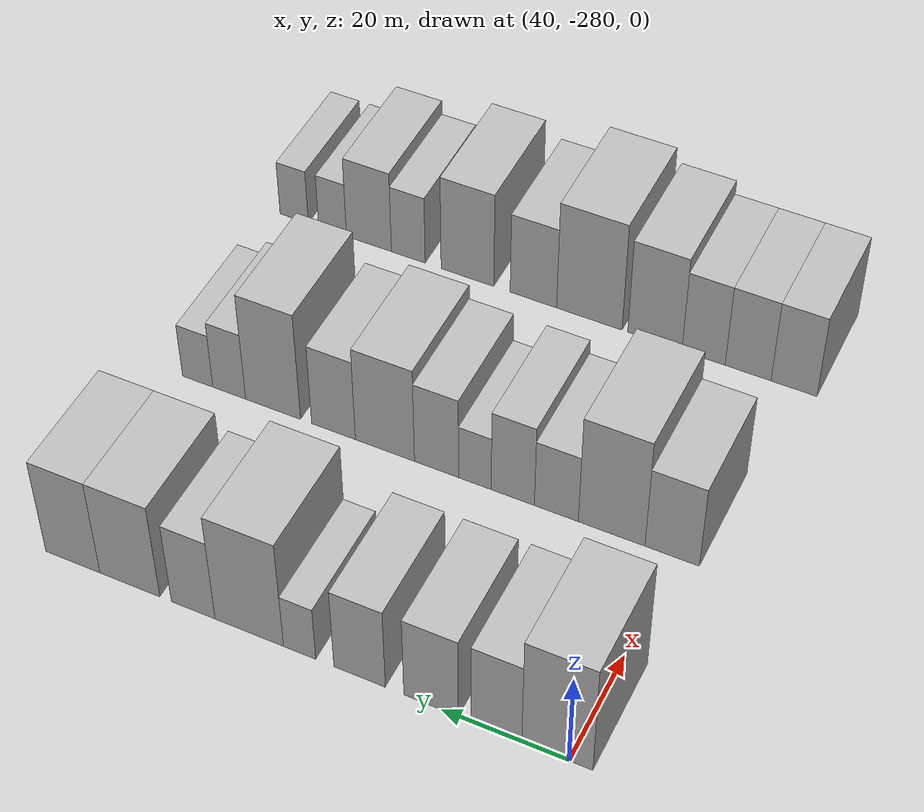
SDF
<sdf version="1.6">
 <world name="default">
  <model name="building_11">
   <static>1</static>
   <pose>50.0000 -278.0995 0 0.000000 0.000000 0.000000</pose>
   <link name="link">
    <pose>0 0 12.00 0 0 0</pose>
    <collision name="collision"><geometry><box><size>20.0000 11.0205 24.0000</size></box></geometry></collision>
    <visual name="visual">
     <cast_shadows>0</cast_shadows>
     <geometry><box><size>20.0000 11.0205 24.0000</size></box></geometry>
     <material>
      <script>
       <uri>model://HANNAS_wall/materials/scripts</uri>
       <uri>model://HANNAS_wall/materials/textures</uri>
       <name>vrc/HANNAS_wall</name>
      </script>
     </material>
    </visual>
   </link>
  </model>
  <model name="building_12">
   <static>1</static>
   <pose>50.0000 -268.5931 0 0.000000 0.000000 0.000000</pose>
   <link name="link">
    <pose>0 0 9.00 0 0 0</pose>
    <collision name="collision"><geometry><box><size>20.0000 7.9923 18.0000</size></box></geometry></collision>
    <visual name="visual">
     <cast_shadows>0</cast_shadows>
     <geometry><box><size>20.0000 7.9923 18.0000</size></box></geometry>
     <material>
      <script>
       <uri>model://HANNAS_wall/materials/scripts</uri>
       <uri>model://HANNAS_wall/materials/textures</uri>
       <name>vrc/HANNAS_wall</name>
      </script>
     </material>
    </visual>
   </link>
  </model>
  <model name="building_13">
   <static>1</static>
   <pose>50.0000 -258.2329 0 0.000000 0.000000 0.000000</pose>
   <link name="link">
    <pose>0 0 9.00 0 0 0</pose>
    <collision name="collision"><geometry><box><size>20.0000 8.7283 18.0000</size></box></geometry></collision>
    <visual name="visual">
     <cast_shadows>0</cast_shadows>
     <geometry><box><size>20.0000 8.7283 18.0000</size></box></geometry>
     <material>
      <script>
       <uri>model://HANNAS_wall/materials/scripts</uri>
       <uri>model://HANNAS_wall/materials/textures</uri>
       <name>vrc/HANNAS_wall</name>
      </script>
     </material>
    </visual>
   </link>
  </model>
  <model name="building_14">
   <static>1</static>
   <pose>50.0000 -246.6707 0 0.000000 0.000000 0.000000</pose>
   <link name="link">
    <pose>0 0 9.00 0 0 0</pose>
    <collision name="collision"><geometry><box><size>20.0000 8.3961 18.0000</size></box></geometry></collision>
    <visual name="visual">
     <cast_shadows>0</cast_shadows>
     <geometry><box><size>20.0000 8.3961 18.0000</size></box></geometry>
     <material>
      <script>
       <uri>model://HANNAS_wall/materials/scripts</uri>
       <uri>model://HANNAS_wall/materials/textures</uri>
       <name>vrc/HANNAS_wall</name>
      </script>
     </material>
    </visual>
   </link>
  </model>
  <model name="building_15">
   <static>1</static>
   <pose>50.0000 -236.7995 0 0.000000 0.000000 0.000000</pose>
   <link name="link">
    <pose>0 0 6.00 0 0 0</pose>
    <collision name="collision"><geometry><box><size>20.0000 5.3462 12.0000</size></box></geometry></collision>
    <visual name="visual">
     <cast_shadows>0</cast_shadows>
     <geometry><box><size>20.0000 5.3462 12.0000</size></box></geometry>
     <material>
      <script>
       <uri>model://HANNAS_wall/materials/scripts</uri>
       <uri>model://HANNAS_wall/materials/textures</uri>
       <name>vrc/HANNAS_wall</name>
      </script>
     </material>
    </visual>
   </link>
  </model>
  <model name="building_16">
   <static>1</static>
   <pose>50.0000 -228.3568 0 0.000000 0.000000 0.000000</pose>
   <link name="link">
    <pose>0 0 12.00 0 0 0</pose>
    <collision name="collision"><geometry><box><size>20.0000 11.5392 24.0000</size></box></geometry></collision>
    <visual name="visual">
     <cast_shadows>0</cast_shadows>
     <geometry><box><size>20.0000 11.5392 24.0000</size></box></geometry>
     <material>
      <script>
       <uri>model://HANNAS_wall/materials/scripts</uri>
       <uri>model://HANNAS_wall/materials/textures</uri>
       <name>vrc/HANNAS_wall</name>
      </script>
     </material>
    </visual>
   </link>
  </model>
  <model name="building_17">
   <static>1</static>
   <pose>50.0000 -218.8502 0 0.000000 0.000000 0.000000</pose>
   <link name="link">
    <pose>0 0 9.00 0 0 0</pose>
    <collision name="collision"><geometry><box><size>20.0000 7.4741 18.0000</size></box></geometry></collision>
    <visual name="visual">
     <cast_shadows>0</cast_shadows>
     <geometry><box><size>20.0000 7.4741 18.0000</size></box></geometry>
     <material>
      <script>
       <uri>model://HANNAS_wall/materials/scripts</uri>
       <uri>model://HANNAS_wall/materials/textures</uri>
       <name>vrc/HANNAS_wall</name>
      </script>
     </material>
    </visual>
   </link>
  </model>
  <model name="building_18">
   <static>1</static>
   <pose>50.0000 -207.8882 0 0.000000 0.000000 0.000000</pose>
   <link name="link">
    <pose>0 0 10.50 0 0 0</pose>
    <collision name="collision"><geometry><box><size>20.0000 10.4499 21.0000</size></box></geometry></collision>
    <visual name="visual">
     <cast_shadows>0</cast_shadows>
     <geometry><box><size>20.0000 10.4499 21.0000</size></box></geometry>
     <material>
      <script>
       <uri>model://HANNAS_wall/materials/scripts</uri>
       <uri>model://HANNAS_wall/materials/textures</uri>
       <name>vrc/HANNAS_wall</name>
      </script>
     </material>
    </visual>
   </link>
  </model>
  <model name="building_19">
   <static>1</static>
   <pose>50.0000 -197.8814 0 0.000000 0.000000 0.000000</pose>
   <link name="link">
    <pose>0 0 10.50 0 0 0</pose>
    <collision name="collision"><geometry><box><size>20.0000 9.5638 21.0000</size></box></geometry></collision>
    <visual name="visual">
     <cast_shadows>0</cast_shadows>
     <geometry><box><size>20.0000 9.5638 21.0000</size></box></geometry>
     <material>
      <script>
       <uri>model://HANNAS_wall/materials/scripts</uri>
       <uri>model://HANNAS_wall/materials/textures</uri>
       <name>vrc/HANNAS_wall</name>
      </script>
     </material>
    </visual>
   </link>
  </model>
  <model name="building_93">
   <static>1</static>
   <pose>90.0000 -279.3601 0 0.000000 0.000000 0.000000</pose>
   <link name="link">
    <pose>0 0 9.00 0 0 0</pose>
    <collision name="collision"><geometry><box><size>20.0000 8.9115 18.0000</size></box></geometry></collision>
    <visual name="visual">
     <cast_shadows>0</cast_shadows>
     <geometry><box><size>20.0000 8.9115 18.0000</size></box></geometry>
     <material>
      <script>
       <uri>model://HANNAS_wall/materials/scripts</uri>
       <uri>model://HANNAS_wall/materials/textures</uri>
       <name>vrc/HANNAS_wall</name>
      </script>
     </material>
    </visual>
   </link>
  </model>
  <model name="building_94">
   <static>1</static>
   <pose>90.0000 -269.3649 0 0.000000 0.000000 0.000000</pose>
   <link name="link">
    <pose>0 0 12.00 0 0 0</pose>
    <collision name="collision"><geometry><box><size>20.0000 11.0789 24.0000</size></box></geometry></collision>
    <visual name="visual">
     <cast_shadows>0</cast_shadows>
     <geometry><box><size>20.0000 11.0789 24.0000</size></box></geometry>
     <material>
      <script>
       <uri>model://HANNAS_wall/materials/scripts</uri>
       <uri>model://HANNAS_wall/materials/textures</uri>
       <name>vrc/HANNAS_wall</name>
      </script>
     </material>
    </visual>
   </link>
  </model>
  <model name="building_95">
   <static>1</static>
   <pose>90.0000 -260.1246 0 0.000000 0.000000 0.000000</pose>
   <link name="link">
    <pose>0 0 7.50 0 0 0</pose>
    <collision name="collision"><geometry><box><size>20.0000 7.4017 15.0000</size></box></geometry></collision>
    <visual name="visual">
     <cast_shadows>0</cast_shadows>
     <geometry><box><size>20.0000 7.4017 15.0000</size></box></geometry>
     <material>
      <script>
       <uri>model://HANNAS_wall/materials/scripts</uri>
       <uri>model://HANNAS_wall/materials/textures</uri>
       <name>vrc/HANNAS_wall</name>
      </script>
     </material>
    </visual>
   </link>
  </model>
  <model name="building_96">
   <static>1</static>
   <pose>90.0000 -252.7368 0 0.000000 0.000000 0.000000</pose>
   <link name="link">
    <pose>0 0 9.00 0 0 0</pose>
    <collision name="collision"><geometry><box><size>20.0000 7.3741 18.0000</size></box></geometry></collision>
    <visual name="visual">
     <cast_shadows>0</cast_shadows>
     <geometry><box><size>20.0000 7.3741 18.0000</size></box></geometry>
     <material>
      <script>
       <uri>model://HANNAS_wall/materials/scripts</uri>
       <uri>model://HANNAS_wall/materials/textures</uri>
       <name>vrc/HANNAS_wall</name>
      </script>
     </material>
    </visual>
   </link>
  </model>
  <model name="building_97">
   <static>1</static>
   <pose>90.0000 -246.2502 0 0.000000 0.000000 0.000000</pose>
   <link name="link">
    <pose>0 0 6.00 0 0 0</pose>
    <collision name="collision"><geometry><box><size>20.0000 5.5991 12.0000</size></box></geometry></collision>
    <visual name="visual">
     <cast_shadows>0</cast_shadows>
     <geometry><box><size>20.0000 5.5991 12.0000</size></box></geometry>
     <material>
      <script>
       <uri>model://HANNAS_wall/materials/scripts</uri>
       <uri>model://HANNAS_wall/materials/textures</uri>
       <name>vrc/HANNAS_wall</name>
      </script>
     </material>
    </visual>
   </link>
  </model>
  <model name="building_98">
   <static>1</static>
   <pose>90.0000 -239.6065 0 0.000000 0.000000 0.000000</pose>
   <link name="link">
    <pose>0 0 9.00 0 0 0</pose>
    <collision name="collision"><geometry><box><size>20.0000 7.6883 18.0000</size></box></geometry></collision>
    <visual name="visual">
     <cast_shadows>0</cast_shadows>
     <geometry><box><size>20.0000 7.6883 18.0000</size></box></geometry>
     <material>
      <script>
       <uri>model://HANNAS_wall/materials/scripts</uri>
       <uri>model://HANNAS_wall/materials/textures</uri>
       <name>vrc/HANNAS_wall</name>
      </script>
     </material>
    </visual>
   </link>
  </model>
  <model name="building_99">
   <static>1</static>
   <pose>90.0000 -230.5441 0 0.000000 0.000000 0.000000</pose>
   <link name="link">
    <pose>0 0 10.50 0 0 0</pose>
    <collision name="collision"><geometry><box><size>20.0000 10.4366 21.0000</size></box></geometry></collision>
    <visual name="visual">
     <cast_shadows>0</cast_shadows>
     <geometry><box><size>20.0000 10.4366 21.0000</size></box></geometry>
     <material>
      <script>
       <uri>model://HANNAS_wall/materials/scripts</uri>
       <uri>model://HANNAS_wall/materials/textures</uri>
       <name>vrc/HANNAS_wall</name>
      </script>
     </material>
    </visual>
   </link>
  </model>
  <model name="building_100">
   <static>1</static>
   <pose>90.0000 -221.4091 0 0.000000 0.000000 0.000000</pose>
   <link name="link">
    <pose>0 0 9.00 0 0 0</pose>
    <collision name="collision"><geometry><box><size>20.0000 7.8334 18.0000</size></box></geometry></collision>
    <visual name="visual">
     <cast_shadows>0</cast_shadows>
     <geometry><box><size>20.0000 7.8334 18.0000</size></box></geometry>
     <material>
      <script>
       <uri>model://HANNAS_wall/materials/scripts</uri>
       <uri>model://HANNAS_wall/materials/textures</uri>
       <name>vrc/HANNAS_wall</name>
      </script>
     </material>
    </visual>
   </link>
  </model>
  <model name="building_101">
   <static>1</static>
   <pose>90.0000 -210.4926 0 0.000000 0.000000 0.000000</pose>
   <link name="link">
    <pose>0 0 12.00 0 0 0</pose>
    <collision name="collision"><geometry><box><size>20.0000 9.9996 24.0000</size></box></geometry></collision>
    <visual name="visual">
     <cast_shadows>0</cast_shadows>
     <geometry><box><size>20.0000 9.9996 24.0000</size></box></geometry>
     <material>
      <script>
       <uri>model://HANNAS_wall/materials/scripts</uri>
       <uri>model://HANNAS_wall/materials/textures</uri>
       <name>vrc/HANNAS_wall</name>
      </script>
     </material>
    </visual>
   </link>
  </model>
  <model name="building_102">
   <static>1</static>
   <pose>90.0000 -202.4703 0 0.000000 0.000000 0.000000</pose>
   <link name="link">
    <pose>0 0 7.50 0 0 0</pose>
    <collision name="collision"><geometry><box><size>20.0000 6.0449 15.0000</size></box></geometry></collision>
    <visual name="visual">
     <cast_shadows>0</cast_shadows>
     <geometry><box><size>20.0000 6.0449 15.0000</size></box></geometry>
     <material>
      <script>
       <uri>model://HANNAS_wall/materials/scripts</uri>
       <uri>model://HANNAS_wall/materials/textures</uri>
       <name>vrc/HANNAS_wall</name>
      </script>
     </material>
    </visual>
   </link>
  </model>
  <model name="building_103">
   <static>1</static>
   <pose>90.0000 -196.6282 0 0.000000 0.000000 0.000000</pose>
   <link name="link">
    <pose>0 0 6.00 0 0 0</pose>
    <collision name="collision"><geometry><box><size>20.0000 5.6393 12.0000</size></box></geometry></collision>
    <visual name="visual">
     <cast_shadows>0</cast_shadows>
     <geometry><box><size>20.0000 5.6393 12.0000</size></box></geometry>
     <material>
      <script>
       <uri>model://HANNAS_wall/materials/scripts</uri>
       <uri>model://HANNAS_wall/materials/textures</uri>
       <name>vrc/HANNAS_wall</name>
      </script>
     </material>
    </visual>
   </link>
  </model>
  <model name="building_178">
   <static>1</static>
   <pose>130.0000 -284.2657 0 0.000000 0.000000 0.000000</pose>
   <link name="link">
    <pose>0 0 9.00 0 0 0</pose>
    <collision name="collision"><geometry><box><size>20.0000 7.8565 18.0000</size></box></geometry></collision>
    <visual name="visual">
     <cast_shadows>0</cast_shadows>
     <geometry><box><size>20.0000 7.8565 18.0000</size></box></geometry>
     <material>
      <script>
       <uri>model://HANNAS_wall/materials/scripts</uri>
       <uri>model://HANNAS_wall/materials/textures</uri>
       <name>vrc/HANNAS_wall</name>
      </script>
     </material>
    </visual>
   </link>
  </model>
  <model name="building_179">
   <static>1</static>
   <pose>130.0000 -276.3596 0 0.000000 0.000000 0.000000</pose>
   <link name="link">
    <pose>0 0 9.00 0 0 0</pose>
    <collision name="collision"><geometry><box><size>20.0000 7.9558 18.0000</size></box></geometry></collision>
    <visual name="visual">
     <cast_shadows>0</cast_shadows>
     <geometry><box><size>20.0000 7.9558 18.0000</size></box></geometry>
     <material>
      <script>
       <uri>model://HANNAS_wall/materials/scripts</uri>
       <uri>model://HANNAS_wall/materials/textures</uri>
       <name>vrc/HANNAS_wall</name>
      </script>
     </material>
    </visual>
   </link>
  </model>
  <model name="building_180">
   <static>1</static>
   <pose>130.0000 -268.5925 0 0.000000 0.000000 0.000000</pose>
   <link name="link">
    <pose>0 0 9.00 0 0 0</pose>
    <collision name="collision"><geometry><box><size>20.0000 7.5783 18.0000</size></box></geometry></collision>
    <visual name="visual">
     <cast_shadows>0</cast_shadows>
     <geometry><box><size>20.0000 7.5783 18.0000</size></box></geometry>
     <material>
      <script>
       <uri>model://HANNAS_wall/materials/scripts</uri>
       <uri>model://HANNAS_wall/materials/textures</uri>
       <name>vrc/HANNAS_wall</name>
      </script>
     </material>
    </visual>
   </link>
  </model>
  <model name="building_181">
   <static>1</static>
   <pose>130.0000 -259.9926 0 0.000000 0.000000 0.000000</pose>
   <link name="link">
    <pose>0 0 10.50 0 0 0</pose>
    <collision name="collision"><geometry><box><size>20.0000 9.6215 21.0000</size></box></geometry></collision>
    <visual name="visual">
     <cast_shadows>0</cast_shadows>
     <geometry><box><size>20.0000 9.6215 21.0000</size></box></geometry>
     <material>
      <script>
       <uri>model://HANNAS_wall/materials/scripts</uri>
       <uri>model://HANNAS_wall/materials/textures</uri>
       <name>vrc/HANNAS_wall</name>
      </script>
     </material>
    </visual>
   </link>
  </model>
  <model name="building_182">
   <static>1</static>
   <pose>130.0000 -248.2557 0 0.000000 0.000000 0.000000</pose>
   <link name="link">
    <pose>0 0 12.00 0 0 0</pose>
    <collision name="collision"><geometry><box><size>20.0000 11.8523 24.0000</size></box></geometry></collision>
    <visual name="visual">
     <cast_shadows>0</cast_shadows>
     <geometry><box><size>20.0000 11.8523 24.0000</size></box></geometry>
     <material>
      <script>
       <uri>model://HANNAS_wall/materials/scripts</uri>
       <uri>model://HANNAS_wall/materials/textures</uri>
       <name>vrc/HANNAS_wall</name>
      </script>
     </material>
    </visual>
   </link>
  </model>
  <model name="building_183">
   <static>1</static>
   <pose>130.0000 -238.0745 0 0.000000 0.000000 0.000000</pose>
   <link name="link">
    <pose>0 0 9.00 0 0 0</pose>
    <collision name="collision"><geometry><box><size>20.0000 8.5102 18.0000</size></box></geometry></collision>
    <visual name="visual">
     <cast_shadows>0</cast_shadows>
     <geometry><box><size>20.0000 8.5102 18.0000</size></box></geometry>
     <material>
      <script>
       <uri>model://HANNAS_wall/materials/scripts</uri>
       <uri>model://HANNAS_wall/materials/textures</uri>
       <name>vrc/HANNAS_wall</name>
      </script>
     </material>
    </visual>
   </link>
  </model>
  <model name="building_184">
   <static>1</static>
   <pose>130.0000 -225.8971 0 0.000000 0.000000 0.000000</pose>
   <link name="link">
    <pose>0 0 10.50 0 0 0</pose>
    <collision name="collision"><geometry><box><size>20.0000 9.8445 21.0000</size></box></geometry></collision>
    <visual name="visual">
     <cast_shadows>0</cast_shadows>
     <geometry><box><size>20.0000 9.8445 21.0000</size></box></geometry>
     <material>
      <script>
       <uri>model://HANNAS_wall/materials/scripts</uri>
       <uri>model://HANNAS_wall/materials/textures</uri>
       <name>vrc/HANNAS_wall</name>
      </script>
     </material>
    </visual>
   </link>
  </model>
  <model name="building_185">
   <static>1</static>
   <pose>130.0000 -214.7678 0 0.000000 0.000000 0.000000</pose>
   <link name="link">
    <pose>0 0 7.50 0 0 0</pose>
    <collision name="collision"><geometry><box><size>20.0000 6.4142 15.0000</size></box></geometry></collision>
    <visual name="visual">
     <cast_shadows>0</cast_shadows>
     <geometry><box><size>20.0000 6.4142 15.0000</size></box></geometry>
     <material>
      <script>
       <uri>model://HANNAS_wall/materials/scripts</uri>
       <uri>model://HANNAS_wall/materials/textures</uri>
       <name>vrc/HANNAS_wall</name>
      </script>
     </material>
    </visual>
   </link>
  </model>
  <model name="building_186">
   <static>1</static>
   <pose>130.0000 -207.2532 0 0.000000 0.000000 0.000000</pose>
   <link name="link">
    <pose>0 0 9.00 0 0 0</pose>
    <collision name="collision"><geometry><box><size>20.0000 8.6151 18.0000</size></box></geometry></collision>
    <visual name="visual">
     <cast_shadows>0</cast_shadows>
     <geometry><box><size>20.0000 8.6151 18.0000</size></box></geometry>
     <material>
      <script>
       <uri>model://HANNAS_wall/materials/scripts</uri>
       <uri>model://HANNAS_wall/materials/textures</uri>
       <name>vrc/HANNAS_wall</name>
      </script>
     </material>
    </visual>
   </link>
  </model>
  <model name="building_187">
   <static>1</static>
   <pose>130.0000 -200.2462 0 0.000000 0.000000 0.000000</pose>
   <link name="link">
    <pose>0 0 6.00 0 0 0</pose>
    <collision name="collision"><geometry><box><size>20.0000 5.3988 12.0000</size></box></geometry></collision>
    <visual name="visual">
     <cast_shadows>0</cast_shadows>
     <geometry><box><size>20.0000 5.3988 12.0000</size></box></geometry>
     <material>
      <script>
       <uri>model://HANNAS_wall/materials/scripts</uri>
       <uri>model://HANNAS_wall/materials/textures</uri>
       <name>vrc/HANNAS_wall</name>
      </script>
     </material>
    </visual>
   </link>
  </model>
  <model name="building_188">
   <static>1</static>
   <pose>130.0000 -192.7887 0 0.000000 0.000000 0.000000</pose>
   <link name="link">
    <pose>0 0 6.00 0 0 0</pose>
    <collision name="collision"><geometry><box><size>20.0000 5.5162 12.0000</size></box></geometry></collision>
    <visual name="visual">
     <cast_shadows>0</cast_shadows>
     <geometry><box><size>20.0000 5.5162 12.0000</size></box></geometry>
     <material>
      <script>
       <uri>model://HANNAS_wall/materials/scripts</uri>
       <uri>model://HANNAS_wall/materials/textures</uri>
       <name>vrc/HANNAS_wall</name>
      </script>
     </material>
    </visual>
   </link>
  </model>
 </world>
</sdf>
